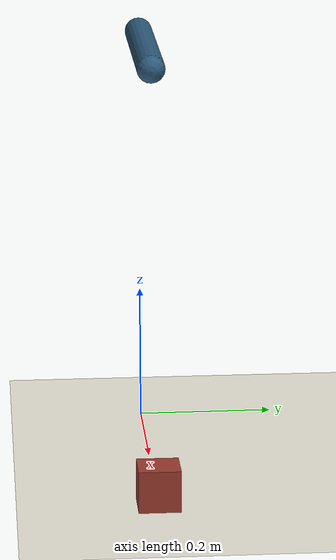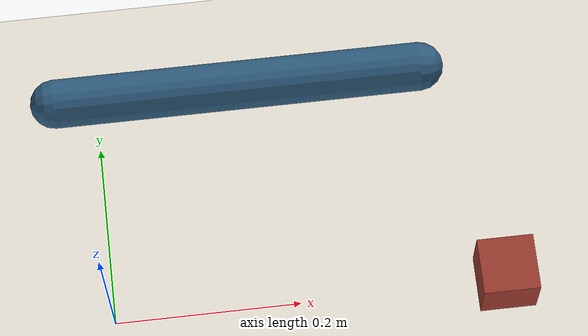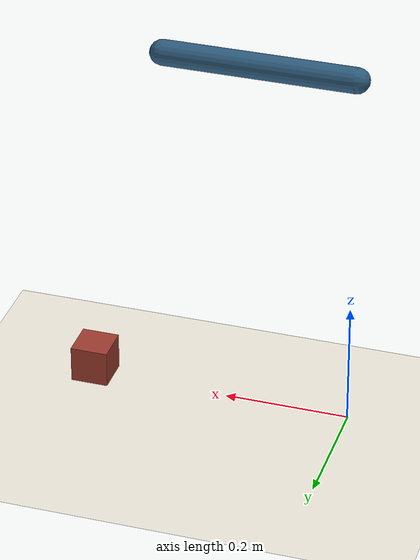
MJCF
<mujoco model="two-link">
  <!-- Global physics settings. Everything here applies to the whole scene. -->
  <option gravity="0 0 -9.81" timestep="0.002"/>

  <!-- Defaults are the stylesheet: attributes every element inherits unless it says otherwise. -->
  <default>
    <joint type="hinge" axis="0 1 0" damping="0.4"/>
    <geom type="capsule" size="0.02" rgba="0.18 0.36 0.49 1"/>
    <position kp="12" kv="1.2"/>
    <default class="cube">
      <geom type="box" size="0.03 0.03 0.03" rgba="0.61 0.23 0.18 1"/>
    </default>
  </default>

  <!-- The tree. Nesting is parenthood; pos/quat are relative to the parent body. -->
  <worldbody>
    <light pos="0 0 2" dir="0 0 -1"/>
    <geom name="floor" type="plane" size="2 2 0.05" rgba="0.92 0.90 0.85 1"/>

    <body name="upper_arm" pos="0 0 0.6">
      <joint name="shoulder"/>
      <geom name="upper_arm" fromto="0 0 0  0.30 0 0"/>

    </body>

    <body name="cube" pos="0.42 0 0.03">
      <freejoint name="cube_free"/>
      <geom name="cube" class="cube"/>
    </body>
  </worldbody>

  <!-- Actuators are a flat list, not part of the tree. They name the joint they drive. -->
  <actuator>
  </actuator>

  <!-- Sensors are also a flat list. -->
  <sensor>
  </sensor>

  <!-- qpos order follows the tree: shoulder, elbow, then the cube's 7-number free joint. -->
  <keyframe>
  </keyframe>
</mujoco>
